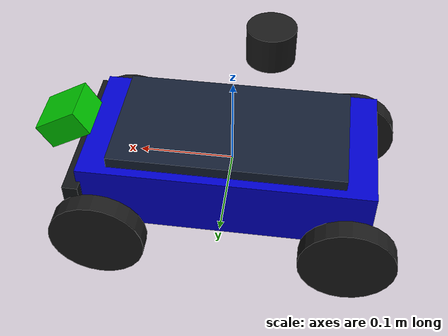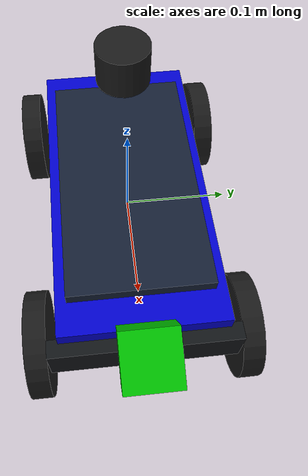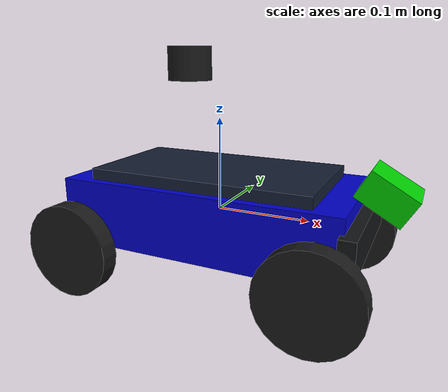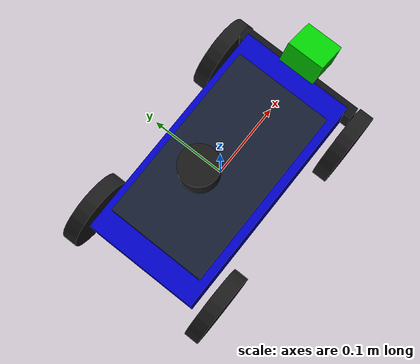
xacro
<?xml version="1.0"?>
<robot name="ackermann_chassis"
       xmlns:xacro="http://www.ros.org/wiki/xacro">

  <xacro:property name="base_length" value="0.3"/>
  <xacro:property name="base_width" value="0.15"/>
  <xacro:property name="base_height" value="0.07"/>
  <xacro:property name="wheel_radius" value="0.05"/>
  <xacro:property name="wheel_width" value="0.02"/>
  <xacro:property name="wheel_mass" value="0.1"/>
  <xacro:property name="wheelbase" value="0.257"/>
  <xacro:property name="track_width" value="0.192"/>
  <xacro:property name="base_mass" value="1.5"/>
  <xacro:property name="lidar_radius" value="0.02315"/>
  <xacro:property name="lidar_height" value="0.0348"/>
  <xacro:property name="lidar_mass" value="0.0461"/>

  <!-- ==================== INERTIA MACROS ==================== -->
  <xacro:macro name="box_inertia" params="m x y z">
    <inertial>
      <origin xyz="0 0 0" rpy="0 0 0"/>
      <mass value="${m}"/>
      <inertia
        ixx="${(1/12)*m*(y*y+z*z)}"
        ixy="0" ixz="0"
        iyy="${(1/12)*m*(x*x+z*z)}"
        iyz="0"
        izz="${(1/12)*m*(x*x+y*y)}"/>
    </inertial>
  </xacro:macro>

  <xacro:macro name="cylinder_inertia" params="m r h">
    <inertial>
      <origin xyz="0 0 0" rpy="0 0 0"/>
      <mass value="${m}"/>
      <inertia
        ixx="${(1/12)*m*(3*r*r+h*h)}"
        ixy="0" ixz="0"
        iyy="${(1/12)*m*(3*r*r+h*h)}"
        iyz="0"
        izz="${(1/2)*m*r*r}"/>
    </inertial>
  </xacro:macro>

  <xacro:macro name="sphere_inertia" params="m r">
    <inertial>
      <origin xyz="0 0 0" rpy="0 0 0"/>
      <mass value="${m}"/>
      <inertia
        ixx="${(2/5)*m*r*r}"
        ixy="0" ixz="0"
        iyy="${(2/5)*m*r*r}"
        iyz="0"
        izz="${(2/5)*m*r*r}"/>
    </inertial>
  </xacro:macro>

  <!-- ==================== WHEEL MACRO ==================== -->
  <xacro:macro name="wheel" params="name x_offset y_offset">
    <link name="${name}_wheel">
      <visual>
        <origin xyz="0 0 0" rpy="0 0 0"/>
        <geometry>
          <cylinder radius="${wheel_radius}" length="${wheel_width}"/>
        </geometry>
        <material name="black">
          <color rgba="0.1 0.1 0.1 1"/>
        </material>
      </visual>
      <collision>
        <origin xyz="0 0 0" rpy="0 0 0"/>
        <geometry>
          <cylinder radius="${wheel_radius}" length="${wheel_width}"/>
        </geometry>
      </collision>
      <xacro:cylinder_inertia m="${wheel_mass}"
                              r="${wheel_radius}"
                              h="${wheel_width}"/>
    </link>

      <gazebo reference="${name}_wheel">
        <mu1 value="0.9"/>
        <mu2 value="0.9"/>
      </gazebo>

    <joint name="${name}_wheel_joint" type="revolute">
      <parent link="base_link"/>
      <child link="${name}_wheel"/>
      <origin xyz="${x_offset} ${y_offset} -0.035" rpy="-1.5707 0 0"/>
      <limit lower="-1e+16" upper="1e+16" effort="10" velocity="10"/>
      <axis xyz="0 0 1"/>
    </joint>
  </xacro:macro>

  <!-- ==================== BASE LINK ==================== -->
  <link name="base_link">
    <visual>
      <origin xyz="0 0 0" rpy="0 0 0"/>
      <geometry>
        <box size="${base_length} ${base_width} ${base_height}"/>
      </geometry>
      <material name="blue">
        <color rgba="0 0 0.8 1"/>
      </material>
    </visual>
    <visual>
      <origin xyz="0 0 0.04" rpy="0 0 0"/>
      <geometry>
        <box size="0.24 0.13 0.014"/>
      </geometry>
      <material name="dark_blue">
        <color rgba="0.08 0.12 0.2 1"/>
      </material>
    </visual>
    <visual>
      <origin xyz="0.154 0 0" rpy="0 0 0"/>
      <geometry>
        <box size="0.016 0.17 0.04"/>
      </geometry>
      <material name="bumper">
        <color rgba="0.07 0.08 0.09 1"/>
      </material>
    </visual>
    <collision>
      <origin xyz="0 0 0" rpy="0 0 0"/>
      <geometry>
        <box size="${base_length} ${base_width} ${base_height}"/>
      </geometry>
    </collision>
    <xacro:box_inertia m="${base_mass}"
                       x="${base_length}"
                       y="${base_width}"
                       z="${base_height}"/>
  </link>

  <!--FRONT STEERING JOINTS-->
  <!-- FRONT LEFT -->
  <link name="front_left_steer_link">
    <xacro:box_inertia m="0.05" x="0.01" y="0.01" z="0.01"/>
  </link>

  <joint name="front_left_steer_joint" type="revolute">
    <parent link="base_link"/>
    <child link="front_left_steer_link"/>
    <origin xyz="0.1285 0.096 -0.035" rpy="0 0 0"/>
    <limit lower="-0.5" upper="0.5" effort="10" velocity="1.0"/>
    <axis xyz="0 0 1"/>
  </joint>

  <link name="front_left_wheel_link">
    <visual>
      <origin xyz="0 0 0" rpy="0 0 0"/>
      <geometry>
        <cylinder radius="${wheel_radius}" length="${wheel_width}"/>
      </geometry>
      <material name="black">
        <color rgba="0.1 0.1 0.1 1"/>
      </material>
    </visual>
    <collision>
      <origin xyz="0 0 0" rpy="0 0 0"/>
      <geometry>
        <cylinder radius="${wheel_radius}" length="${wheel_width}"/>
      </geometry>
    </collision>
    <xacro:cylinder_inertia m="${wheel_mass}" r="${wheel_radius}" h="${wheel_width}"/>
  </link>

  <gazebo reference="front_left_wheel_link">
    <mu1 value="0.9"/>
    <mu2 value="0.9"/>
  </gazebo>

  <joint name="front_left_wheel_joint" type="revolute">
    <parent link="front_left_steer_link"/>
    <child link="front_left_wheel_link"/>
    <origin xyz="0 0 0" rpy="-1.5707 0 0"/>
    <limit lower="-1e+16" upper="1e+16" effort="10" velocity="10"/>
    <axis xyz="0 0 1"/>
  </joint>

  <!-- FRONT RIGHT -->
  <link name="front_right_steer_link">
    <xacro:box_inertia m="0.05" x="0.01" y="0.01" z="0.01"/>
  </link>

  <joint name="front_right_steer_joint" type="revolute">
    <parent link="base_link"/>
    <child link="front_right_steer_link"/>
    <origin xyz="0.1285 -0.096 -0.035" rpy="0 0 0"/>
    <limit lower="-0.5" upper="0.5" effort="10" velocity="1.0"/>
    <axis xyz="0 0 1"/>
  </joint>

  <link name="front_right_wheel_link">
    <visual>
      <origin xyz="0 0 0" rpy="0 0 0"/>
      <geometry>
        <cylinder radius="${wheel_radius}" length="${wheel_width}"/>
      </geometry>
      <material name="black">
        <color rgba="0.1 0.1 0.1 1"/>
      </material>
    </visual>
    <collision>
      <origin xyz="0 0 0" rpy="0 0 0"/>
      <geometry>
        <cylinder radius="${wheel_radius}" length="${wheel_width}"/>
      </geometry>
    </collision>
    <xacro:cylinder_inertia m="${wheel_mass}" r="${wheel_radius}" h="${wheel_width}"/>
  </link>

  <gazebo reference="front_right_wheel_link">
    <mu1 value="0.9"/>
    <mu2 value="0.9"/>
  </gazebo>

  <joint name="front_right_wheel_joint" type="revolute">
    <parent link="front_right_steer_link"/>
    <child link="front_right_wheel_link"/>
    <origin xyz="0 0 0" rpy="-1.5707 0 0"/>
    <limit lower="-1e+16" upper="1e+16" effort="10" velocity="10"/>
    <axis xyz="0 0 1"/>
  </joint>

  <!--LIDAR LINK-->
  <link name="lidar_link">
    <visual>
      <origin xyz="0 0 0" rpy="0 0 0"/>
      <geometry>
        <cylinder radius="${lidar_radius}" length="${lidar_height}"/>
      </geometry>
      <material name="black">
        <color rgba="0.1 0.1 0.1 1"/>
      </material>
    </visual>
    <collision>
      <origin xyz="0 0 0" rpy="0 0 0"/>
      <geometry>
        <cylinder radius="${lidar_radius}" length="${lidar_height}"/>
      </geometry>
    </collision>
    <xacro:cylinder_inertia m="${lidar_mass}"
                            r="${lidar_radius}"
                            h="${lidar_height}"/>
  </link>

  <joint name="lidar_joint" type="fixed">
    <parent link="base_link"/>
    <child link="lidar_link"/>
    <!-- On top of base, centered -->
    <origin xyz="-0.035 0 0.155" rpy="0 0 0"/>
  </joint>

  <!--CAMERA LINK-->
  <link name="camera_link">
    <visual>
      <origin xyz="0 0 0" rpy="0 0 0"/>
      <geometry>
        <box size="0.05 0.05 0.03"/>
      </geometry>
      <material name="green">
        <color rgba="0 0.8 0 1"/>
      </material>
    </visual>
    <collision>
      <origin xyz="0 0 0" rpy="0 0 0"/>
      <geometry>
        <box size="0.05 0.05 0.03"/>
      </geometry>
    </collision>
    <xacro:box_inertia m="0.1" x="0.05" y="0.05" z="0.03"/>
  </link>

  <joint name="camera_joint" type="fixed">
    <parent link="base_link"/>
    <child link="camera_link"/>
    <!-- Front of robot, tilted down 30 degrees -->
    <origin xyz="0.175 0 0.04" rpy="0 0.523 0"/>
  </joint>

  <!-- ==================== WHEELS ==================== -->
  <xacro:wheel name="rear_left" x_offset="-0.1285" y_offset="0.096"/>
  <xacro:wheel name="rear_right" x_offset="-0.1285" y_offset="-0.096"/>

  <!-- ==================== GAZEBO PLUGIN ==================== -->
  <gazebo>
    <plugin filename="gz-sim-ackermann-steering-system"
            name="gz::sim::systems::AckermannSteering">
      <left_joint>rear_left_wheel_joint</left_joint>
      <right_joint>rear_right_wheel_joint</right_joint>
      <left_steering_joint>front_left_steer_joint</left_steering_joint>
      <right_steering_joint>front_right_steer_joint</right_steering_joint>
      <kingpin_width>0.192</kingpin_width>
      <steering_limit>0.5</steering_limit>
      <wheel_base>0.257</wheel_base>
      <wheel_separation>0.192</wheel_separation>
      <wheel_radius>0.05</wheel_radius>
      <topic>/cmd_vel</topic>
    </plugin>
  </gazebo>

  <gazebo reference="lidar_link">
    <sensor name="lidar" type="gpu_lidar">
      <topic>/scan</topic>
      <update_rate>10</update_rate>
      <lidar>
        <scan>
          <horizontal>
            <samples>360</samples>
            <resolution>1</resolution>
            <min_angle>-3.14159</min_angle>
            <max_angle>3.14159</max_angle>
          </horizontal>
        </scan>
        <range>
          <min>0.12</min>
          <max>10.0</max>
          <resolution>0.01</resolution>
        </range>
      </lidar>
      <always_on>1</always_on>
      <visualize>true</visualize>
    </sensor>
  </gazebo>

  <gazebo reference="camera_link">
    <sensor name="camera" type="camera">
      <topic>/camera/image_raw</topic>
      <update_rate>30</update_rate>
      <camera>
        <horizontal_fov>1.3962634</horizontal_fov>
        <image>
          <width>640</width>
          <height>480</height>
          <format>R8G8B8</format>
        </image>
        <clip>
          <near>0.02</near>
          <far>300</far>
        </clip>
      </camera>
      <always_on>1</always_on>
      <visualize>true</visualize>
    </sensor>
  </gazebo>

</robot>
